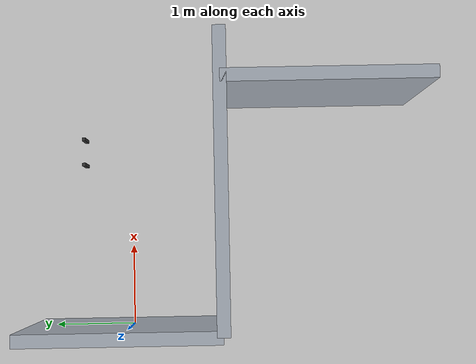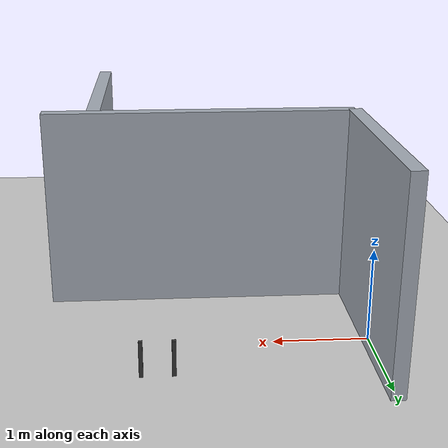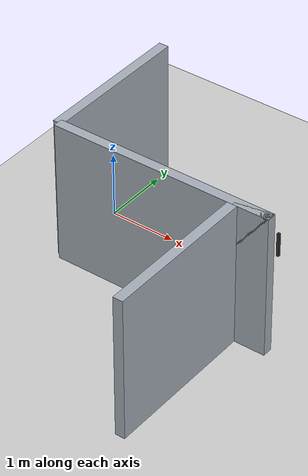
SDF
<sdf version="1.9">
 <world name="default">
  <model name="ground_plane">
   <static>true</static>
   <pose>5.15 0 -0.05 0 0 0</pose>
   <link name="body">
    <collision name="collision"><geometry><box><size>14.3 12 0.1</size></box></geometry></collision>
    <visual name="visual">
     <geometry><box><size>14.3 12 0.1</size></box></geometry>
     <material><ambient>0.8 0.8 0.8 1</ambient><diffuse>0.8 0.8 0.8 1</diffuse></material>
    </visual>
   </link>
  </model>
  <model name="start_wall">
   <static>true</static>
   <pose>0 0 1.1 0 0 0</pose>
   <link name="body">
    <collision name="collision"><geometry><box><size>0.15 2.3 2.2</size></box></geometry></collision>
    <visual name="visual">
     <geometry><box><size>0.15 2.3 2.2</size></box></geometry>
     <material><ambient>0.65 0.68 0.72 1</ambient><diffuse>0.65 0.68 0.72 1</diffuse></material>
    </visual>
   </link>
  </model>
  <model name="hall_-1_1">
   <static>true</static>
   <pose>1.7000000000000002 -1.15 1.1 0 0 0</pose>
   <link name="body">
    <collision name="collision">
     <geometry><box><size>3.4000000000000004 0.15 2.2</size></box></geometry>
    </collision>
    <visual name="visual">
     <geometry><box><size>3.4000000000000004 0.15 2.2</size></box></geometry>
     <material><ambient>0.65 0.68 0.72 1</ambient><diffuse>0.65 0.68 0.72 1</diffuse></material>
    </visual>
   </link>
  </model>
  <model name="room_-1_1_-1">
   <static>true</static>
   <pose>2.8500000000000005 -2.3499999999999996 1.1 0 0 0</pose>
   <link name="body">
    <collision name="collision"><geometry><box><size>0.15 2.4 2.2</size></box></geometry></collision>
    <visual name="visual">
     <geometry><box><size>0.15 2.4 2.2</size></box></geometry>
     <material><ambient>0.65 0.68 0.72 1</ambient><diffuse>0.65 0.68 0.72 1</diffuse></material>
    </visual>
   </link>
  </model>
  <model name="jamb_-1_1_-1">
   <static>true</static>
   <pose>3.1250000000000004 -1.15 1.1 0 0 0</pose>
   <link name="body">
    <collision name="collision"><geometry><box><size>0.55 0.15 2.2</size></box></geometry></collision>
    <visual name="visual">
     <geometry><box><size>0.55 0.15 2.2</size></box></geometry>
     <material><ambient>0.65 0.68 0.72 1</ambient><diffuse>0.65 0.68 0.72 1</diffuse></material>
    </visual>
   </link>
  </model>
  <model name="chair_leg_-0.16_-0.16">
   <static>true</static>
   <pose>2.04 0.5899999999999999 0.19 0 0 0</pose>
   <link name="body">
    <collision name="collision"><geometry><box><size>0.04 0.04 0.38</size></box></geometry></collision>
    <visual name="visual">
     <geometry><box><size>0.04 0.04 0.38</size></box></geometry>
     <material><ambient>0.2 0.2 0.2 1</ambient><diffuse>0.2 0.2 0.2 1</diffuse></material>
    </visual>
   </link>
  </model>
  <model name="chair_leg_0.16_-0.16">
   <static>true</static>
   <pose>2.3600000000000003 0.5899999999999999 0.19 0 0 0</pose>
   <link name="body">
    <collision name="collision"><geometry><box><size>0.04 0.04 0.38</size></box></geometry></collision>
    <visual name="visual">
     <geometry><box><size>0.04 0.04 0.38</size></box></geometry>
     <material><ambient>0.2 0.2 0.2 1</ambient><diffuse>0.2 0.2 0.2 1</diffuse></material>
    </visual>
   </link>
  </model>
 </world>
</sdf>
